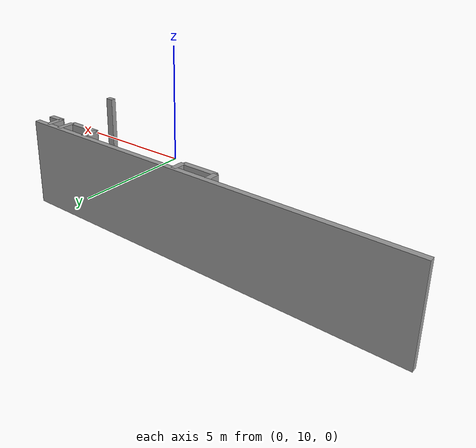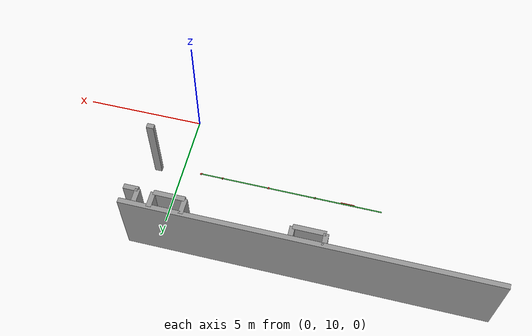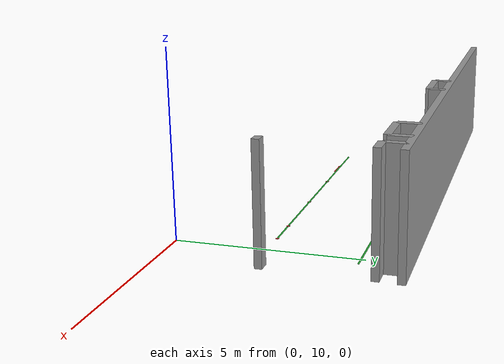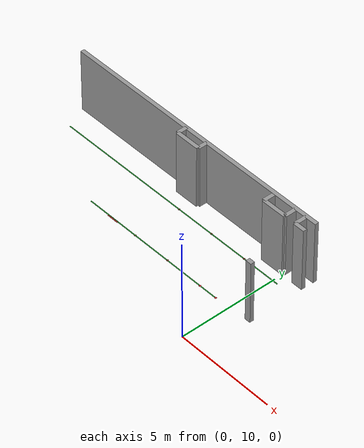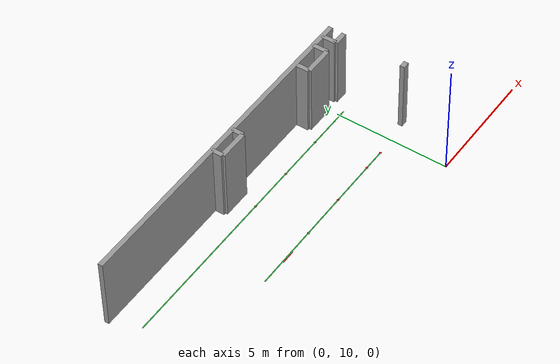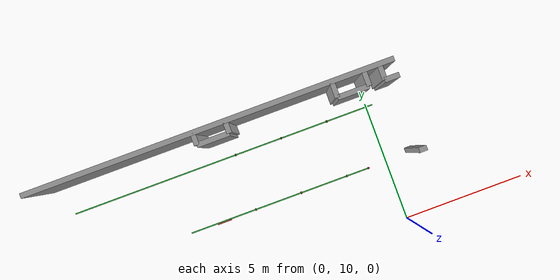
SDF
<sdf version="1.6">
 <world name="square_world">
  <model name="wall5">
   <static>1</static>
   <pose>-6.05 16.1 1.6 0 -0 0</pose>
   <link name="wall_link">
    <inertial><mass>10000</mass></inertial>
    <collision name="wall_collision">
     <geometry><box><size>14.46 0.2 3.2</size></box></geometry>
     <surface><contact><collide_bitmask>2</collide_bitmask></contact></surface>
    </collision>
    <visual name="wall_visual">
     <geometry><box><size>14.46 0.2 3.2</size></box></geometry>
     <material><script><name>Gazebo/Grey</name><uri>__default__</uri></script></material>
    </visual>
   </link>
  </model>
  <model name="wall23">
   <static>1</static>
   <pose>1.0315 12.65 1.6 0 -0 0</pose>
   <link name="wall_link">
    <inertial><mass>10000</mass></inertial>
    <collision name="wall_collision">
     <geometry><box><size>0.297 0.2 3.2</size></box></geometry>
     <surface><contact><collide_bitmask>2</collide_bitmask></contact></surface>
    </collision>
    <visual name="wall_visual">
     <geometry><box><size>0.297 0.2 3.2</size></box></geometry>
     <material><script><name>Gazebo/Grey</name><uri>__default__</uri></script></material>
    </visual>
   </link>
  </model>
  <model name="wall25">
   <static>1</static>
   <pose>0.87 15.48 1.6 0 -0 0</pose>
   <link name="wall_link">
    <inertial><mass>10000</mass></inertial>
    <collision name="wall_collision">
     <geometry><box><size>0.58 0.2 3.2</size></box></geometry>
     <surface><contact><collide_bitmask>2</collide_bitmask></contact></surface>
    </collision>
    <visual name="wall_visual">
     <geometry><box><size>0.58 0.2 3.2</size></box></geometry>
     <material><script><name>Gazebo/Grey</name><uri>__default__</uri></script></material>
    </visual>
   </link>
  </model>
  <model name="wall26">
   <static>1</static>
   <pose>0.6 15.79 1.6 0 0 -1.5708</pose>
   <link name="wall_link">
    <inertial><mass>10000</mass></inertial>
    <collision name="wall_collision">
     <geometry><box><size>0.62 0.2 3.2</size></box></geometry>
     <surface><contact><collide_bitmask>2</collide_bitmask></contact></surface>
    </collision>
    <visual name="wall_visual">
     <geometry><box><size>0.62 0.2 3.2</size></box></geometry>
     <material><script><name>Gazebo/Grey</name><uri>__default__</uri></script></material>
    </visual>
   </link>
  </model>
  <model name="wall27">
   <static>1</static>
   <pose>-0.01 15.787 1.6 0 0 -1.5708</pose>
   <link name="wall_link">
    <inertial><mass>10000</mass></inertial>
    <collision name="wall_collision">
     <geometry><box><size>0.626 0.2 3.2</size></box></geometry>
     <surface><contact><collide_bitmask>2</collide_bitmask></contact></surface>
    </collision>
    <visual name="wall_visual">
     <geometry><box><size>0.626 0.2 3.2</size></box></geometry>
     <material><script><name>Gazebo/Grey</name><uri>__default__</uri></script></material>
    </visual>
   </link>
  </model>
  <model name="wall28">
   <static>1</static>
   <pose>-1.24 15.787 1.6 0 0 -1.5708</pose>
   <link name="wall_link">
    <inertial><mass>10000</mass></inertial>
    <collision name="wall_collision">
     <geometry><box><size>0.626 0.2 3.2</size></box></geometry>
     <surface><contact><collide_bitmask>2</collide_bitmask></contact></surface>
    </collision>
    <visual name="wall_visual">
     <geometry><box><size>0.626 0.2 3.2</size></box></geometry>
     <material><script><name>Gazebo/Grey</name><uri>__default__</uri></script></material>
    </visual>
   </link>
  </model>
  <model name="wall29">
   <static>1</static>
   <pose>-0.625 15.474 1.6 0 -0 0</pose>
   <link name="wall_link">
    <inertial><mass>10000</mass></inertial>
    <collision name="wall_collision">
     <geometry><box><size>1.23 0.2 3.2</size></box></geometry>
     <surface><contact><collide_bitmask>2</collide_bitmask></contact></surface>
    </collision>
    <visual name="wall_visual">
     <geometry><box><size>1.23 0.2 3.2</size></box></geometry>
     <material><script><name>Gazebo/Grey</name><uri>__default__</uri></script></material>
    </visual>
   </link>
  </model>
  <model name="wall30">
   <static>1</static>
   <pose>-5.37 15.86 1.6 0 0 -1.5708</pose>
   <link name="wall_link">
    <inertial><mass>10000</mass></inertial>
    <collision name="wall_collision">
     <geometry><box><size>0.48 0.2 3.2</size></box></geometry>
     <surface><contact><collide_bitmask>2</collide_bitmask></contact></surface>
    </collision>
    <visual name="wall_visual">
     <geometry><box><size>0.48 0.2 3.2</size></box></geometry>
     <material><script><name>Gazebo/Grey</name><uri>__default__</uri></script></material>
    </visual>
   </link>
  </model>
  <model name="wall31">
   <static>1</static>
   <pose>-6.63 15.86 1.6 0 0 -1.5708</pose>
   <link name="wall_link">
    <inertial><mass>10000</mass></inertial>
    <collision name="wall_collision">
     <geometry><box><size>0.48 0.2 3.2</size></box></geometry>
     <surface><contact><collide_bitmask>2</collide_bitmask></contact></surface>
    </collision>
    <visual name="wall_visual">
     <geometry><box><size>0.48 0.2 3.2</size></box></geometry>
     <material><script><name>Gazebo/Grey</name><uri>__default__</uri></script></material>
    </visual>
   </link>
  </model>
  <model name="wall32">
   <static>1</static>
   <pose>-6 15.62 1.6 0 -0 0</pose>
   <link name="wall_link">
    <inertial><mass>10000</mass></inertial>
    <collision name="wall_collision">
     <geometry><box><size>1.26 0.2 3.2</size></box></geometry>
     <surface><contact><collide_bitmask>2</collide_bitmask></contact></surface>
    </collision>
    <visual name="wall_visual">
     <geometry><box><size>1.26 0.2 3.2</size></box></geometry>
     <material><script><name>Gazebo/Grey</name><uri>__default__</uri></script></material>
    </visual>
   </link>
  </model>
  <model name="wall538">
   <static>1</static>
   <pose>-6.24 14.88 0 0 -0 0</pose>
   <link name="wall_link">
    <inertial><mass>10000</mass></inertial>
    <collision name="wall_collision">
     <geometry><box><size>13.04 0.05 0.001</size></box></geometry>
     <surface><contact><collide_bitmask>2</collide_bitmask></contact></surface>
    </collision>
    <visual name="wall_visual">
     <geometry><box><size>13.04 0.05 0.001</size></box></geometry>
     <material><script><name>Gazebo/Green</name><uri>__default__</uri></script></material>
    </visual>
   </link>
  </model>
  <model name="wall5688">
   <static>1</static>
   <pose>-4.66 12.48 0 0 -0 0</pose>
   <link name="wall_link">
    <inertial><mass>10000</mass></inertial>
    <collision name="wall_collision">
     <geometry><box><size>7.76 0.05 0.001</size></box></geometry>
     <surface><contact><collide_bitmask>2</collide_bitmask></contact></surface>
    </collision>
    <visual name="wall_visual">
     <geometry><box><size>7.76 0.05 0.001</size></box></geometry>
     <material><script><name>Gazebo/Green</name><uri>__default__</uri></script></material>
    </visual>
   </link>
  </model>
  <model name="wall838">
   <static>1</static>
   <pose>-7.1 12.445 0 0 -0 0</pose>
   <link name="wall_link">
    <inertial><mass>10000</mass></inertial>
    <collision name="wall_collision">
     <geometry><box><size>0.6 0.05 0.001</size></box></geometry>
     <surface><contact><collide_bitmask>2</collide_bitmask></contact></surface>
    </collision>
    <visual name="wall_visual">
     <geometry><box><size>0.6 0.05 0.001</size></box></geometry>
     <material><script><name>Gazebo/Red</name><uri>__default__</uri></script></material>
    </visual>
   </link>
  </model>
  <model name="wall1168">
   <static>1</static>
   <pose>-1.72 14.88 0 0 -0 0</pose>
   <link name="wall_link">
    <inertial><mass>10000</mass></inertial>
    <collision name="wall_collision">
     <geometry><cylinder><radius>0.05</radius><length>0.001</length></cylinder></geometry>
     <surface><contact><collide_bitmask>2</collide_bitmask></contact></surface>
    </collision>
    <visual name="wall_visual">
     <geometry><cylinder><radius>0.05</radius><length>0.001</length></cylinder></geometry>
     <material><script><name>Gazebo/Red</name><uri>__default__</uri></script></material>
    </visual>
   </link>
  </model>
  <model name="wall1178">
   <static>1</static>
   <pose>-3.72 14.88 0 0 -0 0</pose>
   <link name="wall_link">
    <inertial><mass>10000</mass></inertial>
    <collision name="wall_collision">
     <geometry><cylinder><radius>0.05</radius><length>0.001</length></cylinder></geometry>
     <surface><contact><collide_bitmask>2</collide_bitmask></contact></surface>
    </collision>
    <visual name="wall_visual">
     <geometry><cylinder><radius>0.05</radius><length>0.001</length></cylinder></geometry>
     <material><script><name>Gazebo/Red</name><uri>__default__</uri></script></material>
    </visual>
   </link>
  </model>
  <model name="wall1188">
   <static>1</static>
   <pose>-5.72 14.88 0 0 -0 0</pose>
   <link name="wall_link">
    <inertial><mass>10000</mass></inertial>
    <collision name="wall_collision">
     <geometry><cylinder><radius>0.05</radius><length>0.001</length></cylinder></geometry>
     <surface><contact><collide_bitmask>2</collide_bitmask></contact></surface>
    </collision>
    <visual name="wall_visual">
     <geometry><cylinder><radius>0.05</radius><length>0.001</length></cylinder></geometry>
     <material><script><name>Gazebo/Red</name><uri>__default__</uri></script></material>
    </visual>
   </link>
  </model>
  <model name="wall1228">
   <static>1</static>
   <pose>-1.72 12.48 0 0 -0 0</pose>
   <link name="wall_link">
    <inertial><mass>10000</mass></inertial>
    <collision name="wall_collision">
     <geometry><cylinder><radius>0.05</radius><length>0.001</length></cylinder></geometry>
     <surface><contact><collide_bitmask>2</collide_bitmask></contact></surface>
    </collision>
    <visual name="wall_visual">
     <geometry><cylinder><radius>0.05</radius><length>0.001</length></cylinder></geometry>
     <material><script><name>Gazebo/Red</name><uri>__default__</uri></script></material>
    </visual>
   </link>
  </model>
  <model name="wall1238">
   <static>1</static>
   <pose>-3.72 12.48 0 0 -0 0</pose>
   <link name="wall_link">
    <inertial><mass>10000</mass></inertial>
    <collision name="wall_collision">
     <geometry><cylinder><radius>0.05</radius><length>0.001</length></cylinder></geometry>
     <surface><contact><collide_bitmask>2</collide_bitmask></contact></surface>
    </collision>
    <visual name="wall_visual">
     <geometry><cylinder><radius>0.05</radius><length>0.001</length></cylinder></geometry>
     <material><script><name>Gazebo/Red</name><uri>__default__</uri></script></material>
    </visual>
   </link>
  </model>
  <model name="wall1248">
   <static>1</static>
   <pose>-5.72 12.48 0 0 -0 0</pose>
   <link name="wall_link">
    <inertial><mass>10000</mass></inertial>
    <collision name="wall_collision">
     <geometry><cylinder><radius>0.05</radius><length>0.001</length></cylinder></geometry>
     <surface><contact><collide_bitmask>2</collide_bitmask></contact></surface>
    </collision>
    <visual name="wall_visual">
     <geometry><cylinder><radius>0.05</radius><length>0.001</length></cylinder></geometry>
     <material><script><name>Gazebo/Red</name><uri>__default__</uri></script></material>
    </visual>
   </link>
  </model>
  <model name="wall1298">
   <static>1</static>
   <pose>-0.78 12.48 0 0 -0 0</pose>
   <link name="wall_link">
    <inertial><mass>10000</mass></inertial>
    <collision name="wall_collision">
     <geometry><cylinder><radius>0.05</radius><length>0.001</length></cylinder></geometry>
     <surface><contact><collide_bitmask>2</collide_bitmask></contact></surface>
    </collision>
    <visual name="wall_visual">
     <geometry><cylinder><radius>0.05</radius><length>0.001</length></cylinder></geometry>
     <material><script><name>Gazebo/Red</name><uri>__default__</uri></script></material>
    </visual>
   </link>
  </model>
 </world>
</sdf>
